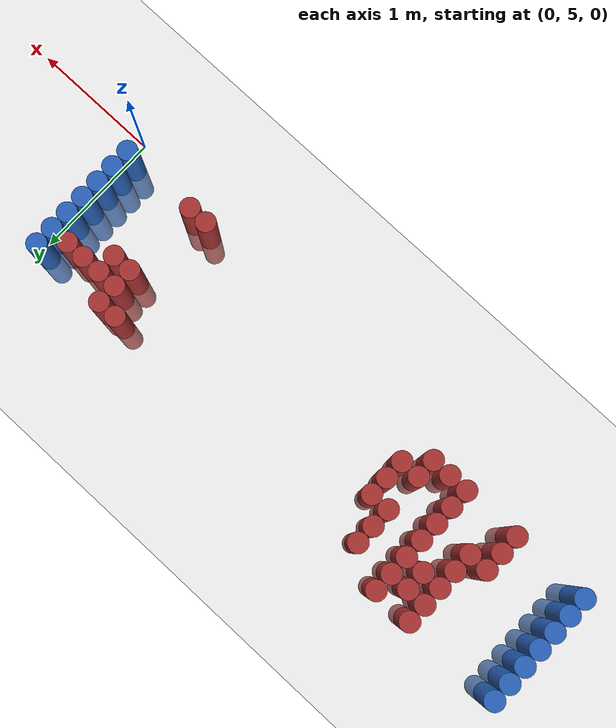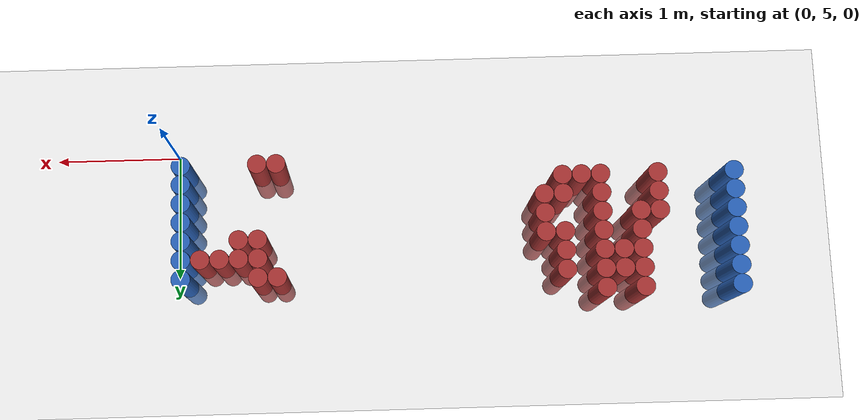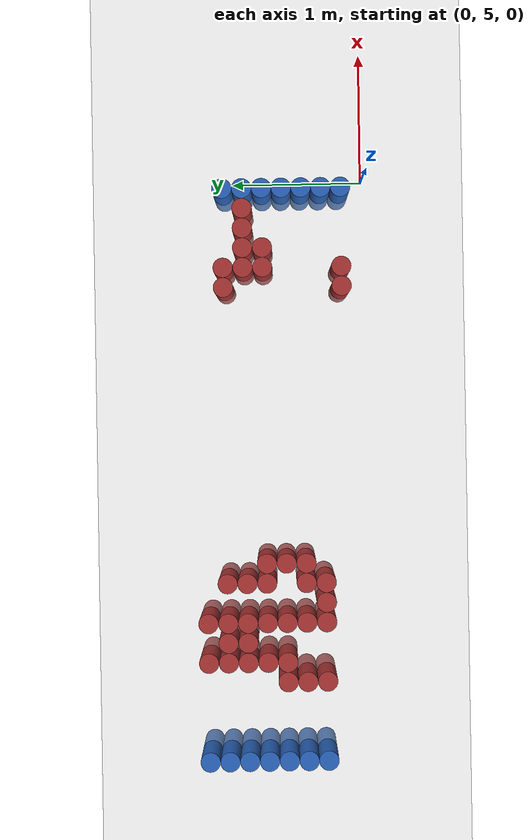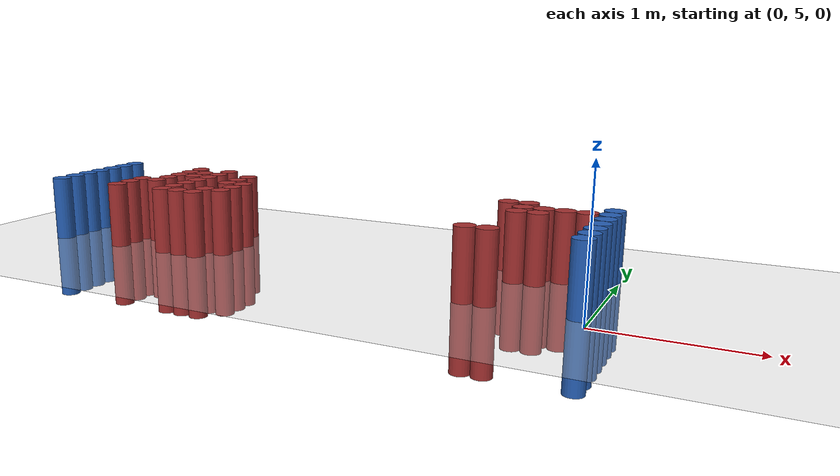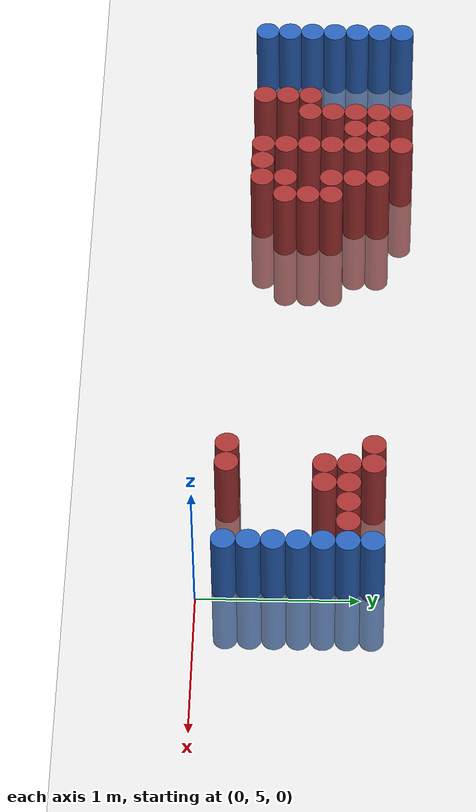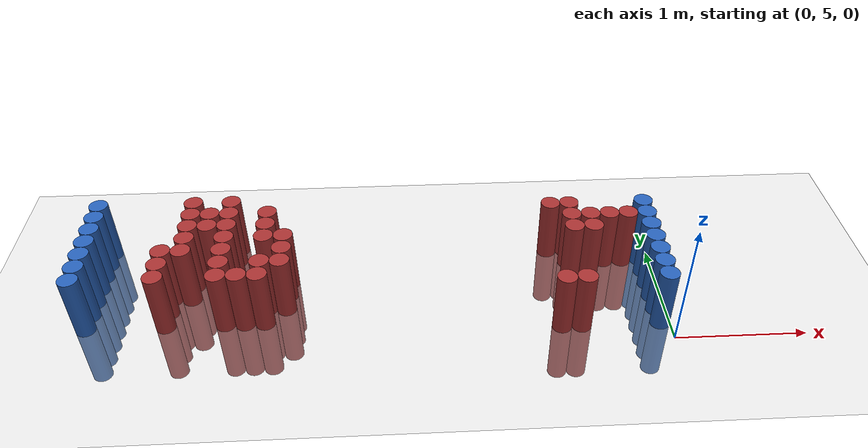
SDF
<sdf version="1.6">
 <world name="default">
  <model name="ground_plane">
   <static>1</static>
   <link name="link">
    <collision name="collision">
     <geometry><plane><normal>0 0 1</normal><size>100 100</size></plane></geometry>
     <surface><friction><ode><mu>100</mu><mu2>50</mu2></ode></friction></surface>
    </collision>
    <visual name="visual">
     <cast_shadows>0</cast_shadows>
     <geometry><plane><normal>0 0 1</normal><size>100 100</size></plane></geometry>
     <material>
      <script><uri>file://media/materials/scripts/gazebo.material</uri><name>Gazebo/Grey</name></script>
     </material>
    </visual>
   </link>
  </model>
  <model name="unit_cylinder_97">
   <static>1</static>
   <pose>-4.425000 5.325000 0.000000 0.000000 0.000000 0.000000</pose>
   <link name="link">
    <inertial>
     <mass>1</mass>
     <inertia><ixx>0.145833</ixx><ixy>0</ixy><ixz>0</ixz><iyy>0.145833</iyy><iyz>0</iyz><izz>0.125</izz></inertia>
    </inertial>
    <collision name="collision">
     <geometry><cylinder><radius>0.075000</radius><length>1</length></cylinder></geometry>
    </collision>
    <visual name="visual">
     <geometry><cylinder><radius>0.075000</radius><length>1</length></cylinder></geometry>
     <material>
      <ambient>0.152000 0.379000 0.720000 1</ambient>
      <diffuse>0.152000 0.379000 0.720000 1</diffuse>
     </material>
     <material>
      <script><name>Gazebo/Grey</name><uri>file://media/materials/scripts/gazebo.material</uri></script>
     </material>
    </visual>
   </link>
  </model>
  <model name="unit_cylinder_98">
   <static>1</static>
   <pose>-4.425000 5.475000 0.000000 0.000000 0.000000 0.000000</pose>
   <link name="link">
    <inertial>
     <mass>1</mass>
     <inertia><ixx>0.145833</ixx><ixy>0</ixy><ixz>0</ixz><iyy>0.145833</iyy><iyz>0</iyz><izz>0.125</izz></inertia>
    </inertial>
    <collision name="collision">
     <geometry><cylinder><radius>0.075000</radius><length>1</length></cylinder></geometry>
    </collision>
    <visual name="visual">
     <geometry><cylinder><radius>0.075000</radius><length>1</length></cylinder></geometry>
     <material>
      <ambient>0.152000 0.379000 0.720000 1</ambient>
      <diffuse>0.152000 0.379000 0.720000 1</diffuse>
     </material>
     <material>
      <script><name>Gazebo/Grey</name><uri>file://media/materials/scripts/gazebo.material</uri></script>
     </material>
    </visual>
   </link>
  </model>
  <model name="unit_cylinder_99">
   <static>1</static>
   <pose>-4.425000 5.625000 0.000000 0.000000 0.000000 0.000000</pose>
   <link name="link">
    <inertial>
     <mass>1</mass>
     <inertia><ixx>0.145833</ixx><ixy>0</ixy><ixz>0</ixz><iyy>0.145833</iyy><iyz>0</iyz><izz>0.125</izz></inertia>
    </inertial>
    <collision name="collision">
     <geometry><cylinder><radius>0.075000</radius><length>1</length></cylinder></geometry>
    </collision>
    <visual name="visual">
     <geometry><cylinder><radius>0.075000</radius><length>1</length></cylinder></geometry>
     <material>
      <ambient>0.152000 0.379000 0.720000 1</ambient>
      <diffuse>0.152000 0.379000 0.720000 1</diffuse>
     </material>
     <material>
      <script><name>Gazebo/Grey</name><uri>file://media/materials/scripts/gazebo.material</uri></script>
     </material>
    </visual>
   </link>
  </model>
  <model name="unit_cylinder_100">
   <static>1</static>
   <pose>-4.425000 5.775000 0.000000 0.000000 0.000000 0.000000</pose>
   <link name="link">
    <inertial>
     <mass>1</mass>
     <inertia><ixx>0.145833</ixx><ixy>0</ixy><ixz>0</ixz><iyy>0.145833</iyy><iyz>0</iyz><izz>0.125</izz></inertia>
    </inertial>
    <collision name="collision">
     <geometry><cylinder><radius>0.075000</radius><length>1</length></cylinder></geometry>
    </collision>
    <visual name="visual">
     <geometry><cylinder><radius>0.075000</radius><length>1</length></cylinder></geometry>
     <material>
      <ambient>0.152000 0.379000 0.720000 1</ambient>
      <diffuse>0.152000 0.379000 0.720000 1</diffuse>
     </material>
     <material>
      <script><name>Gazebo/Grey</name><uri>file://media/materials/scripts/gazebo.material</uri></script>
     </material>
    </visual>
   </link>
  </model>
  <model name="unit_cylinder_101">
   <static>1</static>
   <pose>-4.425000 5.925000 0.000000 0.000000 0.000000 0.000000</pose>
   <link name="link">
    <inertial>
     <mass>1</mass>
     <inertia><ixx>0.145833</ixx><ixy>0</ixy><ixz>0</ixz><iyy>0.145833</iyy><iyz>0</iyz><izz>0.125</izz></inertia>
    </inertial>
    <collision name="collision">
     <geometry><cylinder><radius>0.075000</radius><length>1</length></cylinder></geometry>
    </collision>
    <visual name="visual">
     <geometry><cylinder><radius>0.075000</radius><length>1</length></cylinder></geometry>
     <material>
      <ambient>0.152000 0.379000 0.720000 1</ambient>
      <diffuse>0.152000 0.379000 0.720000 1</diffuse>
     </material>
     <material>
      <script><name>Gazebo/Grey</name><uri>file://media/materials/scripts/gazebo.material</uri></script>
     </material>
    </visual>
   </link>
  </model>
  <model name="unit_cylinder_102">
   <static>1</static>
   <pose>-4.425000 6.075000 0.000000 0.000000 0.000000 0.000000</pose>
   <link name="link">
    <inertial>
     <mass>1</mass>
     <inertia><ixx>0.145833</ixx><ixy>0</ixy><ixz>0</ixz><iyy>0.145833</iyy><iyz>0</iyz><izz>0.125</izz></inertia>
    </inertial>
    <collision name="collision">
     <geometry><cylinder><radius>0.075000</radius><length>1</length></cylinder></geometry>
    </collision>
    <visual name="visual">
     <geometry><cylinder><radius>0.075000</radius><length>1</length></cylinder></geometry>
     <material>
      <ambient>0.152000 0.379000 0.720000 1</ambient>
      <diffuse>0.152000 0.379000 0.720000 1</diffuse>
     </material>
     <material>
      <script><name>Gazebo/Grey</name><uri>file://media/materials/scripts/gazebo.material</uri></script>
     </material>
    </visual>
   </link>
  </model>
  <model name="unit_cylinder_103">
   <static>1</static>
   <pose>-4.425000 6.225000 0.000000 0.000000 0.000000 0.000000</pose>
   <link name="link">
    <inertial>
     <mass>1</mass>
     <inertia><ixx>0.145833</ixx><ixy>0</ixy><ixz>0</ixz><iyy>0.145833</iyy><iyz>0</iyz><izz>0.125</izz></inertia>
    </inertial>
    <collision name="collision">
     <geometry><cylinder><radius>0.075000</radius><length>1</length></cylinder></geometry>
    </collision>
    <visual name="visual">
     <geometry><cylinder><radius>0.075000</radius><length>1</length></cylinder></geometry>
     <material>
      <ambient>0.152000 0.379000 0.720000 1</ambient>
      <diffuse>0.152000 0.379000 0.720000 1</diffuse>
     </material>
     <material>
      <script><name>Gazebo/Grey</name><uri>file://media/materials/scripts/gazebo.material</uri></script>
     </material>
    </visual>
   </link>
  </model>
  <model name="unit_cylinder_136">
   <static>1</static>
   <pose>-3.825000 5.325000 0.000000 0.000000 0.000000 0.000000</pose>
   <link name="link">
    <inertial>
     <mass>1</mass>
     <inertia><ixx>0.145833</ixx><ixy>0</ixy><ixz>0</ixz><iyy>0.145833</iyy><iyz>0</iyz><izz>0.125</izz></inertia>
    </inertial>
    <collision name="collision">
     <geometry><cylinder><radius>0.075000</radius><length>1</length></cylinder></geometry>
    </collision>
    <visual name="visual">
     <geometry><cylinder><radius>0.075000</radius><length>1</length></cylinder></geometry>
     <material>
      <ambient>0.648000 0.192000 0.192000 1</ambient>
      <diffuse>0.648000 0.192000 0.192000 1</diffuse>
     </material>
     <material>
      <script><name>Gazebo/Grey</name><uri>file://media/materials/scripts/gazebo.material</uri></script>
     </material>
    </visual>
   </link>
  </model>
  <model name="unit_cylinder_137">
   <static>1</static>
   <pose>-3.825000 5.475000 0.000000 0.000000 0.000000 0.000000</pose>
   <link name="link">
    <inertial>
     <mass>1</mass>
     <inertia><ixx>0.145833</ixx><ixy>0</ixy><ixz>0</ixz><iyy>0.145833</iyy><iyz>0</iyz><izz>0.125</izz></inertia>
    </inertial>
    <collision name="collision">
     <geometry><cylinder><radius>0.075000</radius><length>1</length></cylinder></geometry>
    </collision>
    <visual name="visual">
     <geometry><cylinder><radius>0.075000</radius><length>1</length></cylinder></geometry>
     <material>
      <ambient>0.648000 0.192000 0.192000 1</ambient>
      <diffuse>0.648000 0.192000 0.192000 1</diffuse>
     </material>
     <material>
      <script><name>Gazebo/Grey</name><uri>file://media/materials/scripts/gazebo.material</uri></script>
     </material>
    </visual>
   </link>
  </model>
  <model name="unit_cylinder_138">
   <static>1</static>
   <pose>-3.825000 5.625000 0.000000 0.000000 0.000000 0.000000</pose>
   <link name="link">
    <inertial>
     <mass>1</mass>
     <inertia><ixx>0.145833</ixx><ixy>0</ixy><ixz>0</ixz><iyy>0.145833</iyy><iyz>0</iyz><izz>0.125</izz></inertia>
    </inertial>
    <collision name="collision">
     <geometry><cylinder><radius>0.075000</radius><length>1</length></cylinder></geometry>
    </collision>
    <visual name="visual">
     <geometry><cylinder><radius>0.075000</radius><length>1</length></cylinder></geometry>
     <material>
      <ambient>0.648000 0.192000 0.192000 1</ambient>
      <diffuse>0.648000 0.192000 0.192000 1</diffuse>
     </material>
     <material>
      <script><name>Gazebo/Grey</name><uri>file://media/materials/scripts/gazebo.material</uri></script>
     </material>
    </visual>
   </link>
  </model>
  <model name="unit_cylinder_146">
   <static>1</static>
   <pose>-3.675000 5.625000 0.000000 0.000000 0.000000 0.000000</pose>
   <link name="link">
    <inertial>
     <mass>1</mass>
     <inertia><ixx>0.145833</ixx><ixy>0</ixy><ixz>0</ixz><iyy>0.145833</iyy><iyz>0</iyz><izz>0.125</izz></inertia>
    </inertial>
    <collision name="collision">
     <geometry><cylinder><radius>0.075000</radius><length>1</length></cylinder></geometry>
    </collision>
    <visual name="visual">
     <geometry><cylinder><radius>0.075000</radius><length>1</length></cylinder></geometry>
     <material>
      <ambient>0.648000 0.192000 0.192000 1</ambient>
      <diffuse>0.648000 0.192000 0.192000 1</diffuse>
     </material>
     <material>
      <script><name>Gazebo/Grey</name><uri>file://media/materials/scripts/gazebo.material</uri></script>
     </material>
    </visual>
   </link>
  </model>
  <model name="unit_cylinder_147">
   <static>1</static>
   <pose>-3.675000 5.775000 0.000000 0.000000 0.000000 0.000000</pose>
   <link name="link">
    <inertial>
     <mass>1</mass>
     <inertia><ixx>0.145833</ixx><ixy>0</ixy><ixz>0</ixz><iyy>0.145833</iyy><iyz>0</iyz><izz>0.125</izz></inertia>
    </inertial>
    <collision name="collision">
     <geometry><cylinder><radius>0.075000</radius><length>1</length></cylinder></geometry>
    </collision>
    <visual name="visual">
     <geometry><cylinder><radius>0.075000</radius><length>1</length></cylinder></geometry>
     <material>
      <ambient>0.648000 0.192000 0.192000 1</ambient>
      <diffuse>0.648000 0.192000 0.192000 1</diffuse>
     </material>
     <material>
      <script><name>Gazebo/Grey</name><uri>file://media/materials/scripts/gazebo.material</uri></script>
     </material>
    </visual>
   </link>
  </model>
  <model name="unit_cylinder_148">
   <static>1</static>
   <pose>-3.675000 5.925000 0.000000 0.000000 0.000000 0.000000</pose>
   <link name="link">
    <inertial>
     <mass>1</mass>
     <inertia><ixx>0.145833</ixx><ixy>0</ixy><ixz>0</ixz><iyy>0.145833</iyy><iyz>0</iyz><izz>0.125</izz></inertia>
    </inertial>
    <collision name="collision">
     <geometry><cylinder><radius>0.075000</radius><length>1</length></cylinder></geometry>
    </collision>
    <visual name="visual">
     <geometry><cylinder><radius>0.075000</radius><length>1</length></cylinder></geometry>
     <material>
      <ambient>0.648000 0.192000 0.192000 1</ambient>
      <diffuse>0.648000 0.192000 0.192000 1</diffuse>
     </material>
     <material>
      <script><name>Gazebo/Grey</name><uri>file://media/materials/scripts/gazebo.material</uri></script>
     </material>
    </visual>
   </link>
  </model>
  <model name="unit_cylinder_149">
   <static>1</static>
   <pose>-3.675000 6.075000 0.000000 0.000000 0.000000 0.000000</pose>
   <link name="link">
    <inertial>
     <mass>1</mass>
     <inertia><ixx>0.145833</ixx><ixy>0</ixy><ixz>0</ixz><iyy>0.145833</iyy><iyz>0</iyz><izz>0.125</izz></inertia>
    </inertial>
    <collision name="collision">
     <geometry><cylinder><radius>0.075000</radius><length>1</length></cylinder></geometry>
    </collision>
    <visual name="visual">
     <geometry><cylinder><radius>0.075000</radius><length>1</length></cylinder></geometry>
     <material>
      <ambient>0.648000 0.192000 0.192000 1</ambient>
      <diffuse>0.648000 0.192000 0.192000 1</diffuse>
     </material>
     <material>
      <script><name>Gazebo/Grey</name><uri>file://media/materials/scripts/gazebo.material</uri></script>
     </material>
    </visual>
   </link>
  </model>
  <model name="unit_cylinder_150">
   <static>1</static>
   <pose>-3.675000 6.225000 0.000000 0.000000 0.000000 0.000000</pose>
   <link name="link">
    <inertial>
     <mass>1</mass>
     <inertia><ixx>0.145833</ixx><ixy>0</ixy><ixz>0</ixz><iyy>0.145833</iyy><iyz>0</iyz><izz>0.125</izz></inertia>
    </inertial>
    <collision name="collision">
     <geometry><cylinder><radius>0.075000</radius><length>1</length></cylinder></geometry>
    </collision>
    <visual name="visual">
     <geometry><cylinder><radius>0.075000</radius><length>1</length></cylinder></geometry>
     <material>
      <ambient>0.648000 0.192000 0.192000 1</ambient>
      <diffuse>0.648000 0.192000 0.192000 1</diffuse>
     </material>
     <material>
      <script><name>Gazebo/Grey</name><uri>file://media/materials/scripts/gazebo.material</uri></script>
     </material>
    </visual>
   </link>
  </model>
  <model name="unit_cylinder_160">
   <static>1</static>
   <pose>-3.525000 5.925000 0.000000 0.000000 0.000000 0.000000</pose>
   <link name="link">
    <inertial>
     <mass>1</mass>
     <inertia><ixx>0.145833</ixx><ixy>0</ixy><ixz>0</ixz><iyy>0.145833</iyy><iyz>0</iyz><izz>0.125</izz></inertia>
    </inertial>
    <collision name="collision">
     <geometry><cylinder><radius>0.075000</radius><length>1</length></cylinder></geometry>
    </collision>
    <visual name="visual">
     <geometry><cylinder><radius>0.075000</radius><length>1</length></cylinder></geometry>
     <material>
      <ambient>0.648000 0.192000 0.192000 1</ambient>
      <diffuse>0.648000 0.192000 0.192000 1</diffuse>
     </material>
     <material>
      <script><name>Gazebo/Grey</name><uri>file://media/materials/scripts/gazebo.material</uri></script>
     </material>
    </visual>
   </link>
  </model>
  <model name="unit_cylinder_161">
   <static>1</static>
   <pose>-3.525000 6.075000 0.000000 0.000000 0.000000 0.000000</pose>
   <link name="link">
    <inertial>
     <mass>1</mass>
     <inertia><ixx>0.145833</ixx><ixy>0</ixy><ixz>0</ixz><iyy>0.145833</iyy><iyz>0</iyz><izz>0.125</izz></inertia>
    </inertial>
    <collision name="collision">
     <geometry><cylinder><radius>0.075000</radius><length>1</length></cylinder></geometry>
    </collision>
    <visual name="visual">
     <geometry><cylinder><radius>0.075000</radius><length>1</length></cylinder></geometry>
     <material>
      <ambient>0.648000 0.192000 0.192000 1</ambient>
      <diffuse>0.648000 0.192000 0.192000 1</diffuse>
     </material>
     <material>
      <script><name>Gazebo/Grey</name><uri>file://media/materials/scripts/gazebo.material</uri></script>
     </material>
    </visual>
   </link>
  </model>
  <model name="unit_cylinder_170">
   <static>1</static>
   <pose>-3.375000 5.325000 0.000000 0.000000 0.000000 0.000000</pose>
   <link name="link">
    <inertial>
     <mass>1</mass>
     <inertia><ixx>0.145833</ixx><ixy>0</ixy><ixz>0</ixz><iyy>0.145833</iyy><iyz>0</iyz><izz>0.125</izz></inertia>
    </inertial>
    <collision name="collision">
     <geometry><cylinder><radius>0.075000</radius><length>1</length></cylinder></geometry>
    </collision>
    <visual name="visual">
     <geometry><cylinder><radius>0.075000</radius><length>1</length></cylinder></geometry>
     <material>
      <ambient>0.648000 0.192000 0.192000 1</ambient>
      <diffuse>0.648000 0.192000 0.192000 1</diffuse>
     </material>
     <material>
      <script><name>Gazebo/Grey</name><uri>file://media/materials/scripts/gazebo.material</uri></script>
     </material>
    </visual>
   </link>
  </model>
  <model name="unit_cylinder_171">
   <static>1</static>
   <pose>-3.375000 5.475000 0.000000 0.000000 0.000000 0.000000</pose>
   <link name="link">
    <inertial>
     <mass>1</mass>
     <inertia><ixx>0.145833</ixx><ixy>0</ixy><ixz>0</ixz><iyy>0.145833</iyy><iyz>0</iyz><izz>0.125</izz></inertia>
    </inertial>
    <collision name="collision">
     <geometry><cylinder><radius>0.075000</radius><length>1</length></cylinder></geometry>
    </collision>
    <visual name="visual">
     <geometry><cylinder><radius>0.075000</radius><length>1</length></cylinder></geometry>
     <material>
      <ambient>0.648000 0.192000 0.192000 1</ambient>
      <diffuse>0.648000 0.192000 0.192000 1</diffuse>
     </material>
     <material>
      <script><name>Gazebo/Grey</name><uri>file://media/materials/scripts/gazebo.material</uri></script>
     </material>
    </visual>
   </link>
  </model>
  <model name="unit_cylinder_172">
   <static>1</static>
   <pose>-3.375000 5.625000 0.000000 0.000000 0.000000 0.000000</pose>
   <link name="link">
    <inertial>
     <mass>1</mass>
     <inertia><ixx>0.145833</ixx><ixy>0</ixy><ixz>0</ixz><iyy>0.145833</iyy><iyz>0</iyz><izz>0.125</izz></inertia>
    </inertial>
    <collision name="collision">
     <geometry><cylinder><radius>0.075000</radius><length>1</length></cylinder></geometry>
    </collision>
    <visual name="visual">
     <geometry><cylinder><radius>0.075000</radius><length>1</length></cylinder></geometry>
     <material>
      <ambient>0.648000 0.192000 0.192000 1</ambient>
      <diffuse>0.648000 0.192000 0.192000 1</diffuse>
     </material>
     <material>
      <script><name>Gazebo/Grey</name><uri>file://media/materials/scripts/gazebo.material</uri></script>
     </material>
    </visual>
   </link>
  </model>
  <model name="unit_cylinder_173">
   <static>1</static>
   <pose>-3.375000 5.775000 0.000000 0.000000 0.000000 0.000000</pose>
   <link name="link">
    <inertial>
     <mass>1</mass>
     <inertia><ixx>0.145833</ixx><ixy>0</ixy><ixz>0</ixz><iyy>0.145833</iyy><iyz>0</iyz><izz>0.125</izz></inertia>
    </inertial>
    <collision name="collision">
     <geometry><cylinder><radius>0.075000</radius><length>1</length></cylinder></geometry>
    </collision>
    <visual name="visual">
     <geometry><cylinder><radius>0.075000</radius><length>1</length></cylinder></geometry>
     <material>
      <ambient>0.648000 0.192000 0.192000 1</ambient>
      <diffuse>0.648000 0.192000 0.192000 1</diffuse>
     </material>
     <material>
      <script><name>Gazebo/Grey</name><uri>file://media/materials/scripts/gazebo.material</uri></script>
     </material>
    </visual>
   </link>
  </model>
  <model name="unit_cylinder_174">
   <static>1</static>
   <pose>-3.375000 5.925000 0.000000 0.000000 0.000000 0.000000</pose>
   <link name="link">
    <inertial>
     <mass>1</mass>
     <inertia><ixx>0.145833</ixx><ixy>0</ixy><ixz>0</ixz><iyy>0.145833</iyy><iyz>0</iyz><izz>0.125</izz></inertia>
    </inertial>
    <collision name="collision">
     <geometry><cylinder><radius>0.075000</radius><length>1</length></cylinder></geometry>
    </collision>
    <visual name="visual">
     <geometry><cylinder><radius>0.075000</radius><length>1</length></cylinder></geometry>
     <material>
      <ambient>0.648000 0.192000 0.192000 1</ambient>
      <diffuse>0.648000 0.192000 0.192000 1</diffuse>
     </material>
     <material>
      <script><name>Gazebo/Grey</name><uri>file://media/materials/scripts/gazebo.material</uri></script>
     </material>
    </visual>
   </link>
  </model>
  <model name="unit_cylinder_175">
   <static>1</static>
   <pose>-3.375000 6.075000 0.000000 0.000000 0.000000 0.000000</pose>
   <link name="link">
    <inertial>
     <mass>1</mass>
     <inertia><ixx>0.145833</ixx><ixy>0</ixy><ixz>0</ixz><iyy>0.145833</iyy><iyz>0</iyz><izz>0.125</izz></inertia>
    </inertial>
    <collision name="collision">
     <geometry><cylinder><radius>0.075000</radius><length>1</length></cylinder></geometry>
    </collision>
    <visual name="visual">
     <geometry><cylinder><radius>0.075000</radius><length>1</length></cylinder></geometry>
     <material>
      <ambient>0.648000 0.192000 0.192000 1</ambient>
      <diffuse>0.648000 0.192000 0.192000 1</diffuse>
     </material>
     <material>
      <script><name>Gazebo/Grey</name><uri>file://media/materials/scripts/gazebo.material</uri></script>
     </material>
    </visual>
   </link>
  </model>
  <model name="unit_cylinder_176">
   <static>1</static>
   <pose>-3.375000 6.225000 0.000000 0.000000 0.000000 0.000000</pose>
   <link name="link">
    <inertial>
     <mass>1</mass>
     <inertia><ixx>0.145833</ixx><ixy>0</ixy><ixz>0</ixz><iyy>0.145833</iyy><iyz>0</iyz><izz>0.125</izz></inertia>
    </inertial>
    <collision name="collision">
     <geometry><cylinder><radius>0.075000</radius><length>1</length></cylinder></geometry>
    </collision>
    <visual name="visual">
     <geometry><cylinder><radius>0.075000</radius><length>1</length></cylinder></geometry>
     <material>
      <ambient>0.648000 0.192000 0.192000 1</ambient>
      <diffuse>0.648000 0.192000 0.192000 1</diffuse>
     </material>
     <material>
      <script><name>Gazebo/Grey</name><uri>file://media/materials/scripts/gazebo.material</uri></script>
     </material>
    </visual>
   </link>
  </model>
  <model name="unit_cylinder_182">
   <static>1</static>
   <pose>-3.225000 5.325000 0.000000 0.000000 0.000000 0.000000</pose>
   <link name="link">
    <inertial>
     <mass>1</mass>
     <inertia><ixx>0.145833</ixx><ixy>0</ixy><ixz>0</ixz><iyy>0.145833</iyy><iyz>0</iyz><izz>0.125</izz></inertia>
    </inertial>
    <collision name="collision">
     <geometry><cylinder><radius>0.075000</radius><length>1</length></cylinder></geometry>
    </collision>
    <visual name="visual">
     <geometry><cylinder><radius>0.075000</radius><length>1</length></cylinder></geometry>
     <material>
      <ambient>0.648000 0.192000 0.192000 1</ambient>
      <diffuse>0.648000 0.192000 0.192000 1</diffuse>
     </material>
     <material>
      <script><name>Gazebo/Grey</name><uri>file://media/materials/scripts/gazebo.material</uri></script>
     </material>
    </visual>
   </link>
  </model>
  <model name="unit_cylinder_194">
   <static>1</static>
   <pose>-3.075000 5.325000 0.000000 0.000000 0.000000 0.000000</pose>
   <link name="link">
    <inertial>
     <mass>1</mass>
     <inertia><ixx>0.145833</ixx><ixy>0</ixy><ixz>0</ixz><iyy>0.145833</iyy><iyz>0</iyz><izz>0.125</izz></inertia>
    </inertial>
    <collision name="collision">
     <geometry><cylinder><radius>0.075000</radius><length>1</length></cylinder></geometry>
    </collision>
    <visual name="visual">
     <geometry><cylinder><radius>0.075000</radius><length>1</length></cylinder></geometry>
     <material>
      <ambient>0.648000 0.192000 0.192000 1</ambient>
      <diffuse>0.648000 0.192000 0.192000 1</diffuse>
     </material>
     <material>
      <script><name>Gazebo/Grey</name><uri>file://media/materials/scripts/gazebo.material</uri></script>
     </material>
    </visual>
   </link>
  </model>
  <model name="unit_cylinder_195">
   <static>1</static>
   <pose>-3.075000 5.475000 0.000000 0.000000 0.000000 0.000000</pose>
   <link name="link">
    <inertial>
     <mass>1</mass>
     <inertia><ixx>0.145833</ixx><ixy>0</ixy><ixz>0</ixz><iyy>0.145833</iyy><iyz>0</iyz><izz>0.125</izz></inertia>
    </inertial>
    <collision name="collision">
     <geometry><cylinder><radius>0.075000</radius><length>1</length></cylinder></geometry>
    </collision>
    <visual name="visual">
     <geometry><cylinder><radius>0.075000</radius><length>1</length></cylinder></geometry>
     <material>
      <ambient>0.648000 0.192000 0.192000 1</ambient>
      <diffuse>0.648000 0.192000 0.192000 1</diffuse>
     </material>
     <material>
      <script><name>Gazebo/Grey</name><uri>file://media/materials/scripts/gazebo.material</uri></script>
     </material>
    </visual>
   </link>
  </model>
  <model name="unit_cylinder_196">
   <static>1</static>
   <pose>-3.075000 5.775000 0.000000 0.000000 0.000000 0.000000</pose>
   <link name="link">
    <inertial>
     <mass>1</mass>
     <inertia><ixx>0.145833</ixx><ixy>0</ixy><ixz>0</ixz><iyy>0.145833</iyy><iyz>0</iyz><izz>0.125</izz></inertia>
    </inertial>
    <collision name="collision">
     <geometry><cylinder><radius>0.075000</radius><length>1</length></cylinder></geometry>
    </collision>
    <visual name="visual">
     <geometry><cylinder><radius>0.075000</radius><length>1</length></cylinder></geometry>
     <material>
      <ambient>0.648000 0.192000 0.192000 1</ambient>
      <diffuse>0.648000 0.192000 0.192000 1</diffuse>
     </material>
     <material>
      <script><name>Gazebo/Grey</name><uri>file://media/materials/scripts/gazebo.material</uri></script>
     </material>
    </visual>
   </link>
  </model>
  <model name="unit_cylinder_197">
   <static>1</static>
   <pose>-3.075000 5.925000 0.000000 0.000000 0.000000 0.000000</pose>
   <link name="link">
    <inertial>
     <mass>1</mass>
     <inertia><ixx>0.145833</ixx><ixy>0</ixy><ixz>0</ixz><iyy>0.145833</iyy><iyz>0</iyz><izz>0.125</izz></inertia>
    </inertial>
    <collision name="collision">
     <geometry><cylinder><radius>0.075000</radius><length>1</length></cylinder></geometry>
    </collision>
    <visual name="visual">
     <geometry><cylinder><radius>0.075000</radius><length>1</length></cylinder></geometry>
     <material>
      <ambient>0.648000 0.192000 0.192000 1</ambient>
      <diffuse>0.648000 0.192000 0.192000 1</diffuse>
     </material>
     <material>
      <script><name>Gazebo/Grey</name><uri>file://media/materials/scripts/gazebo.material</uri></script>
     </material>
    </visual>
   </link>
  </model>
  <model name="unit_cylinder_198">
   <static>1</static>
   <pose>-3.075000 6.075000 0.000000 0.000000 0.000000 0.000000</pose>
   <link name="link">
    <inertial>
     <mass>1</mass>
     <inertia><ixx>0.145833</ixx><ixy>0</ixy><ixz>0</ixz><iyy>0.145833</iyy><iyz>0</iyz><izz>0.125</izz></inertia>
    </inertial>
    <collision name="collision">
     <geometry><cylinder><radius>0.075000</radius><length>1</length></cylinder></geometry>
    </collision>
    <visual name="visual">
     <geometry><cylinder><radius>0.075000</radius><length>1</length></cylinder></geometry>
     <material>
      <ambient>0.648000 0.192000 0.192000 1</ambient>
      <diffuse>0.648000 0.192000 0.192000 1</diffuse>
     </material>
     <material>
      <script><name>Gazebo/Grey</name><uri>file://media/materials/scripts/gazebo.material</uri></script>
     </material>
    </visual>
   </link>
  </model>
  <model name="unit_cylinder_206">
   <static>1</static>
   <pose>-2.925000 5.475000 0.000000 0.000000 0.000000 0.000000</pose>
   <link name="link">
    <inertial>
     <mass>1</mass>
     <inertia><ixx>0.145833</ixx><ixy>0</ixy><ixz>0</ixz><iyy>0.145833</iyy><iyz>0</iyz><izz>0.125</izz></inertia>
    </inertial>
    <collision name="collision">
     <geometry><cylinder><radius>0.075000</radius><length>1</length></cylinder></geometry>
    </collision>
    <visual name="visual">
     <geometry><cylinder><radius>0.075000</radius><length>1</length></cylinder></geometry>
     <material>
      <ambient>0.648000 0.192000 0.192000 1</ambient>
      <diffuse>0.648000 0.192000 0.192000 1</diffuse>
     </material>
     <material>
      <script><name>Gazebo/Grey</name><uri>file://media/materials/scripts/gazebo.material</uri></script>
     </material>
    </visual>
   </link>
  </model>
  <model name="unit_cylinder_207">
   <static>1</static>
   <pose>-2.925000 5.625000 0.000000 0.000000 0.000000 0.000000</pose>
   <link name="link">
    <inertial>
     <mass>1</mass>
     <inertia><ixx>0.145833</ixx><ixy>0</ixy><ixz>0</ixz><iyy>0.145833</iyy><iyz>0</iyz><izz>0.125</izz></inertia>
    </inertial>
    <collision name="collision">
     <geometry><cylinder><radius>0.075000</radius><length>1</length></cylinder></geometry>
    </collision>
    <visual name="visual">
     <geometry><cylinder><radius>0.075000</radius><length>1</length></cylinder></geometry>
     <material>
      <ambient>0.648000 0.192000 0.192000 1</ambient>
      <diffuse>0.648000 0.192000 0.192000 1</diffuse>
     </material>
     <material>
      <script><name>Gazebo/Grey</name><uri>file://media/materials/scripts/gazebo.material</uri></script>
     </material>
    </visual>
   </link>
  </model>
  <model name="unit_cylinder_208">
   <static>1</static>
   <pose>-2.925000 5.775000 0.000000 0.000000 0.000000 0.000000</pose>
   <link name="link">
    <inertial>
     <mass>1</mass>
     <inertia><ixx>0.145833</ixx><ixy>0</ixy><ixz>0</ixz><iyy>0.145833</iyy><iyz>0</iyz><izz>0.125</izz></inertia>
    </inertial>
    <collision name="collision">
     <geometry><cylinder><radius>0.075000</radius><length>1</length></cylinder></geometry>
    </collision>
    <visual name="visual">
     <geometry><cylinder><radius>0.075000</radius><length>1</length></cylinder></geometry>
     <material>
      <ambient>0.648000 0.192000 0.192000 1</ambient>
      <diffuse>0.648000 0.192000 0.192000 1</diffuse>
     </material>
     <material>
      <script><name>Gazebo/Grey</name><uri>file://media/materials/scripts/gazebo.material</uri></script>
     </material>
    </visual>
   </link>
  </model>
  <model name="unit_cylinder_231">
   <static>1</static>
   <pose>-0.825000 5.175000 0.000000 0.000000 0.000000 0.000000</pose>
   <link name="link">
    <inertial>
     <mass>1</mass>
     <inertia><ixx>0.145833</ixx><ixy>0</ixy><ixz>0</ixz><iyy>0.145833</iyy><iyz>0</iyz><izz>0.125</izz></inertia>
    </inertial>
    <collision name="collision">
     <geometry><cylinder><radius>0.075000</radius><length>1</length></cylinder></geometry>
    </collision>
    <visual name="visual">
     <geometry><cylinder><radius>0.075000</radius><length>1</length></cylinder></geometry>
     <material>
      <ambient>0.648000 0.192000 0.192000 1</ambient>
      <diffuse>0.648000 0.192000 0.192000 1</diffuse>
     </material>
     <material>
      <script><name>Gazebo/Grey</name><uri>file://media/materials/scripts/gazebo.material</uri></script>
     </material>
    </visual>
   </link>
  </model>
  <model name="unit_cylinder_232">
   <static>1</static>
   <pose>-0.825000 6.075000 0.000000 0.000000 0.000000 0.000000</pose>
   <link name="link">
    <inertial>
     <mass>1</mass>
     <inertia><ixx>0.145833</ixx><ixy>0</ixy><ixz>0</ixz><iyy>0.145833</iyy><iyz>0</iyz><izz>0.125</izz></inertia>
    </inertial>
    <collision name="collision">
     <geometry><cylinder><radius>0.075000</radius><length>1</length></cylinder></geometry>
    </collision>
    <visual name="visual">
     <geometry><cylinder><radius>0.075000</radius><length>1</length></cylinder></geometry>
     <material>
      <ambient>0.648000 0.192000 0.192000 1</ambient>
      <diffuse>0.648000 0.192000 0.192000 1</diffuse>
     </material>
     <material>
      <script><name>Gazebo/Grey</name><uri>file://media/materials/scripts/gazebo.material</uri></script>
     </material>
    </visual>
   </link>
  </model>
  <model name="unit_cylinder_235">
   <static>1</static>
   <pose>-0.675000 5.175000 0.000000 0.000000 0.000000 0.000000</pose>
   <link name="link">
    <inertial>
     <mass>1</mass>
     <inertia><ixx>0.145833</ixx><ixy>0</ixy><ixz>0</ixz><iyy>0.145833</iyy><iyz>0</iyz><izz>0.125</izz></inertia>
    </inertial>
    <collision name="collision">
     <geometry><cylinder><radius>0.075000</radius><length>1</length></cylinder></geometry>
    </collision>
    <visual name="visual">
     <geometry><cylinder><radius>0.075000</radius><length>1</length></cylinder></geometry>
     <material>
      <ambient>0.648000 0.192000 0.192000 1</ambient>
      <diffuse>0.648000 0.192000 0.192000 1</diffuse>
     </material>
     <material>
      <script><name>Gazebo/Grey</name><uri>file://media/materials/scripts/gazebo.material</uri></script>
     </material>
    </visual>
   </link>
  </model>
  <model name="unit_cylinder_236">
   <static>1</static>
   <pose>-0.675000 5.775000 0.000000 0.000000 0.000000 0.000000</pose>
   <link name="link">
    <inertial>
     <mass>1</mass>
     <inertia><ixx>0.145833</ixx><ixy>0</ixy><ixz>0</ixz><iyy>0.145833</iyy><iyz>0</iyz><izz>0.125</izz></inertia>
    </inertial>
    <collision name="collision">
     <geometry><cylinder><radius>0.075000</radius><length>1</length></cylinder></geometry>
    </collision>
    <visual name="visual">
     <geometry><cylinder><radius>0.075000</radius><length>1</length></cylinder></geometry>
     <material>
      <ambient>0.648000 0.192000 0.192000 1</ambient>
      <diffuse>0.648000 0.192000 0.192000 1</diffuse>
     </material>
     <material>
      <script><name>Gazebo/Grey</name><uri>file://media/materials/scripts/gazebo.material</uri></script>
     </material>
    </visual>
   </link>
  </model>
  <model name="unit_cylinder_237">
   <static>1</static>
   <pose>-0.675000 5.925000 0.000000 0.000000 0.000000 0.000000</pose>
   <link name="link">
    <inertial>
     <mass>1</mass>
     <inertia><ixx>0.145833</ixx><ixy>0</ixy><ixz>0</ixz><iyy>0.145833</iyy><iyz>0</iyz><izz>0.125</izz></inertia>
    </inertial>
    <collision name="collision">
     <geometry><cylinder><radius>0.075000</radius><length>1</length></cylinder></geometry>
    </collision>
    <visual name="visual">
     <geometry><cylinder><radius>0.075000</radius><length>1</length></cylinder></geometry>
     <material>
      <ambient>0.648000 0.192000 0.192000 1</ambient>
      <diffuse>0.648000 0.192000 0.192000 1</diffuse>
     </material>
     <material>
      <script><name>Gazebo/Grey</name><uri>file://media/materials/scripts/gazebo.material</uri></script>
     </material>
    </visual>
   </link>
  </model>
  <model name="unit_cylinder_238">
   <static>1</static>
   <pose>-0.675000 6.075000 0.000000 0.000000 0.000000 0.000000</pose>
   <link name="link">
    <inertial>
     <mass>1</mass>
     <inertia><ixx>0.145833</ixx><ixy>0</ixy><ixz>0</ixz><iyy>0.145833</iyy><iyz>0</iyz><izz>0.125</izz></inertia>
    </inertial>
    <collision name="collision">
     <geometry><cylinder><radius>0.075000</radius><length>1</length></cylinder></geometry>
    </collision>
    <visual name="visual">
     <geometry><cylinder><radius>0.075000</radius><length>1</length></cylinder></geometry>
     <material>
      <ambient>0.648000 0.192000 0.192000 1</ambient>
      <diffuse>0.648000 0.192000 0.192000 1</diffuse>
     </material>
     <material>
      <script><name>Gazebo/Grey</name><uri>file://media/materials/scripts/gazebo.material</uri></script>
     </material>
    </visual>
   </link>
  </model>
  <model name="unit_cylinder_250">
   <static>1</static>
   <pose>-0.525000 5.775000 0.000000 0.000000 0.000000 0.000000</pose>
   <link name="link">
    <inertial>
     <mass>1</mass>
     <inertia><ixx>0.145833</ixx><ixy>0</ixy><ixz>0</ixz><iyy>0.145833</iyy><iyz>0</iyz><izz>0.125</izz></inertia>
    </inertial>
    <collision name="collision">
     <geometry><cylinder><radius>0.075000</radius><length>1</length></cylinder></geometry>
    </collision>
    <visual name="visual">
     <geometry><cylinder><radius>0.075000</radius><length>1</length></cylinder></geometry>
     <material>
      <ambient>0.648000 0.192000 0.192000 1</ambient>
      <diffuse>0.648000 0.192000 0.192000 1</diffuse>
     </material>
     <material>
      <script><name>Gazebo/Grey</name><uri>file://media/materials/scripts/gazebo.material</uri></script>
     </material>
    </visual>
   </link>
  </model>
  <model name="unit_cylinder_251">
   <static>1</static>
   <pose>-0.525000 5.925000 0.000000 0.000000 0.000000 0.000000</pose>
   <link name="link">
    <inertial>
     <mass>1</mass>
     <inertia><ixx>0.145833</ixx><ixy>0</ixy><ixz>0</ixz><iyy>0.145833</iyy><iyz>0</iyz><izz>0.125</izz></inertia>
    </inertial>
    <collision name="collision">
     <geometry><cylinder><radius>0.075000</radius><length>1</length></cylinder></geometry>
    </collision>
    <visual name="visual">
     <geometry><cylinder><radius>0.075000</radius><length>1</length></cylinder></geometry>
     <material>
      <ambient>0.648000 0.192000 0.192000 1</ambient>
      <diffuse>0.648000 0.192000 0.192000 1</diffuse>
     </material>
     <material>
      <script><name>Gazebo/Grey</name><uri>file://media/materials/scripts/gazebo.material</uri></script>
     </material>
    </visual>
   </link>
  </model>
  <model name="unit_cylinder_264">
   <static>1</static>
   <pose>-0.375000 5.925000 0.000000 0.000000 0.000000 0.000000</pose>
   <link name="link">
    <inertial>
     <mass>1</mass>
     <inertia><ixx>0.145833</ixx><ixy>0</ixy><ixz>0</ixz><iyy>0.145833</iyy><iyz>0</iyz><izz>0.125</izz></inertia>
    </inertial>
    <collision name="collision">
     <geometry><cylinder><radius>0.075000</radius><length>1</length></cylinder></geometry>
    </collision>
    <visual name="visual">
     <geometry><cylinder><radius>0.075000</radius><length>1</length></cylinder></geometry>
     <material>
      <ambient>0.648000 0.192000 0.192000 1</ambient>
      <diffuse>0.648000 0.192000 0.192000 1</diffuse>
     </material>
     <material>
      <script><name>Gazebo/Grey</name><uri>file://media/materials/scripts/gazebo.material</uri></script>
     </material>
    </visual>
   </link>
  </model>
  <model name="unit_cylinder_271">
   <static>1</static>
   <pose>-0.225000 5.925000 0.000000 0.000000 0.000000 0.000000</pose>
   <link name="link">
    <inertial>
     <mass>1</mass>
     <inertia><ixx>0.145833</ixx><ixy>0</ixy><ixz>0</ixz><iyy>0.145833</iyy><iyz>0</iyz><izz>0.125</izz></inertia>
    </inertial>
    <collision name="collision">
     <geometry><cylinder><radius>0.075000</radius><length>1</length></cylinder></geometry>
    </collision>
    <visual name="visual">
     <geometry><cylinder><radius>0.075000</radius><length>1</length></cylinder></geometry>
     <material>
      <ambient>0.648000 0.192000 0.192000 1</ambient>
      <diffuse>0.648000 0.192000 0.192000 1</diffuse>
     </material>
     <material>
      <script><name>Gazebo/Grey</name><uri>file://media/materials/scripts/gazebo.material</uri></script>
     </material>
    </visual>
   </link>
  </model>
  <model name="unit_cylinder_273">
   <static>1</static>
   <pose>-0.075000 5.175000 0.000000 0.000000 0.000000 0.000000</pose>
   <link name="link">
    <inertial>
     <mass>1</mass>
     <inertia><ixx>0.145833</ixx><ixy>0</ixy><ixz>0</ixz><iyy>0.145833</iyy><iyz>0</iyz><izz>0.125</izz></inertia>
    </inertial>
    <collision name="collision">
     <geometry><cylinder><radius>0.075000</radius><length>1</length></cylinder></geometry>
    </collision>
    <visual name="visual">
     <geometry><cylinder><radius>0.075000</radius><length>1</length></cylinder></geometry>
     <material>
      <ambient>0.152000 0.379000 0.720000 1</ambient>
      <diffuse>0.152000 0.379000 0.720000 1</diffuse>
     </material>
     <material>
      <script><name>Gazebo/Grey</name><uri>file://media/materials/scripts/gazebo.material</uri></script>
     </material>
    </visual>
   </link>
  </model>
  <model name="unit_cylinder_274">
   <static>1</static>
   <pose>-0.075000 5.325000 0.000000 0.000000 0.000000 0.000000</pose>
   <link name="link">
    <inertial>
     <mass>1</mass>
     <inertia><ixx>0.145833</ixx><ixy>0</ixy><ixz>0</ixz><iyy>0.145833</iyy><iyz>0</iyz><izz>0.125</izz></inertia>
    </inertial>
    <collision name="collision">
     <geometry><cylinder><radius>0.075000</radius><length>1</length></cylinder></geometry>
    </collision>
    <visual name="visual">
     <geometry><cylinder><radius>0.075000</radius><length>1</length></cylinder></geometry>
     <material>
      <ambient>0.152000 0.379000 0.720000 1</ambient>
      <diffuse>0.152000 0.379000 0.720000 1</diffuse>
     </material>
     <material>
      <script><name>Gazebo/Grey</name><uri>file://media/materials/scripts/gazebo.material</uri></script>
     </material>
    </visual>
   </link>
  </model>
  <model name="unit_cylinder_275">
   <static>1</static>
   <pose>-0.075000 5.475000 0.000000 0.000000 0.000000 0.000000</pose>
   <link name="link">
    <inertial>
     <mass>1</mass>
     <inertia><ixx>0.145833</ixx><ixy>0</ixy><ixz>0</ixz><iyy>0.145833</iyy><iyz>0</iyz><izz>0.125</izz></inertia>
    </inertial>
    <collision name="collision">
     <geometry><cylinder><radius>0.075000</radius><length>1</length></cylinder></geometry>
    </collision>
    <visual name="visual">
     <geometry><cylinder><radius>0.075000</radius><length>1</length></cylinder></geometry>
     <material>
      <ambient>0.152000 0.379000 0.720000 1</ambient>
      <diffuse>0.152000 0.379000 0.720000 1</diffuse>
     </material>
     <material>
      <script><name>Gazebo/Grey</name><uri>file://media/materials/scripts/gazebo.material</uri></script>
     </material>
    </visual>
   </link>
  </model>
  <model name="unit_cylinder_276">
   <static>1</static>
   <pose>-0.075000 5.625000 0.000000 0.000000 0.000000 0.000000</pose>
   <link name="link">
    <inertial>
     <mass>1</mass>
     <inertia><ixx>0.145833</ixx><ixy>0</ixy><ixz>0</ixz><iyy>0.145833</iyy><iyz>0</iyz><izz>0.125</izz></inertia>
    </inertial>
    <collision name="collision">
     <geometry><cylinder><radius>0.075000</radius><length>1</length></cylinder></geometry>
    </collision>
    <visual name="visual">
     <geometry><cylinder><radius>0.075000</radius><length>1</length></cylinder></geometry>
     <material>
      <ambient>0.152000 0.379000 0.720000 1</ambient>
      <diffuse>0.152000 0.379000 0.720000 1</diffuse>
     </material>
     <material>
      <script><name>Gazebo/Grey</name><uri>file://media/materials/scripts/gazebo.material</uri></script>
     </material>
    </visual>
   </link>
  </model>
  <model name="unit_cylinder_277">
   <static>1</static>
   <pose>-0.075000 5.775000 0.000000 0.000000 0.000000 0.000000</pose>
   <link name="link">
    <inertial>
     <mass>1</mass>
     <inertia><ixx>0.145833</ixx><ixy>0</ixy><ixz>0</ixz><iyy>0.145833</iyy><iyz>0</iyz><izz>0.125</izz></inertia>
    </inertial>
    <collision name="collision">
     <geometry><cylinder><radius>0.075000</radius><length>1</length></cylinder></geometry>
    </collision>
    <visual name="visual">
     <geometry><cylinder><radius>0.075000</radius><length>1</length></cylinder></geometry>
     <material>
      <ambient>0.152000 0.379000 0.720000 1</ambient>
      <diffuse>0.152000 0.379000 0.720000 1</diffuse>
     </material>
     <material>
      <script><name>Gazebo/Grey</name><uri>file://media/materials/scripts/gazebo.material</uri></script>
     </material>
    </visual>
   </link>
  </model>
  <model name="unit_cylinder_278">
   <static>1</static>
   <pose>-0.075000 5.925000 0.000000 0.000000 0.000000 0.000000</pose>
   <link name="link">
    <inertial>
     <mass>1</mass>
     <inertia><ixx>0.145833</ixx><ixy>0</ixy><ixz>0</ixz><iyy>0.145833</iyy><iyz>0</iyz><izz>0.125</izz></inertia>
    </inertial>
    <collision name="collision">
     <geometry><cylinder><radius>0.075000</radius><length>1</length></cylinder></geometry>
    </collision>
    <visual name="visual">
     <geometry><cylinder><radius>0.075000</radius><length>1</length></cylinder></geometry>
     <material>
      <ambient>0.152000 0.379000 0.720000 1</ambient>
      <diffuse>0.152000 0.379000 0.720000 1</diffuse>
     </material>
     <material>
      <script><name>Gazebo/Grey</name><uri>file://media/materials/scripts/gazebo.material</uri></script>
     </material>
    </visual>
   </link>
  </model>
  <model name="unit_cylinder_279">
   <static>1</static>
   <pose>-0.075000 6.075000 0.000000 0.000000 0.000000 0.000000</pose>
   <link name="link">
    <inertial>
     <mass>1</mass>
     <inertia><ixx>0.145833</ixx><ixy>0</ixy><ixz>0</ixz><iyy>0.145833</iyy><iyz>0</iyz><izz>0.125</izz></inertia>
    </inertial>
    <collision name="collision">
     <geometry><cylinder><radius>0.075000</radius><length>1</length></cylinder></geometry>
    </collision>
    <visual name="visual">
     <geometry><cylinder><radius>0.075000</radius><length>1</length></cylinder></geometry>
     <material>
      <ambient>0.152000 0.379000 0.720000 1</ambient>
      <diffuse>0.152000 0.379000 0.720000 1</diffuse>
     </material>
     <material>
      <script><name>Gazebo/Grey</name><uri>file://media/materials/scripts/gazebo.material</uri></script>
     </material>
    </visual>
   </link>
  </model>
 </world>
</sdf>
